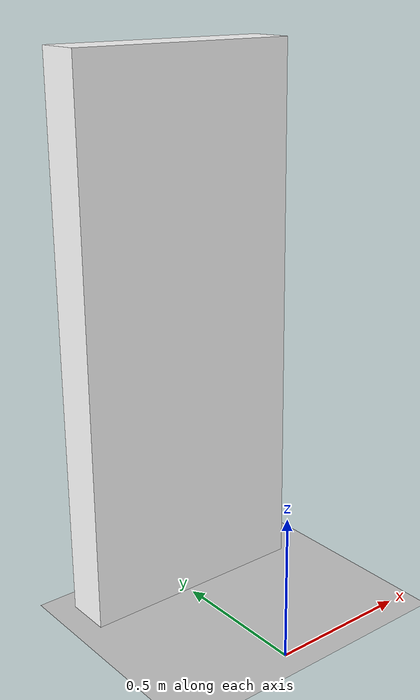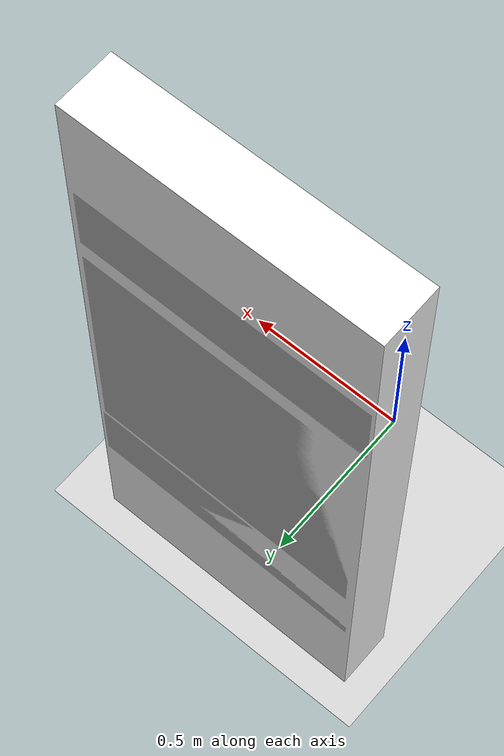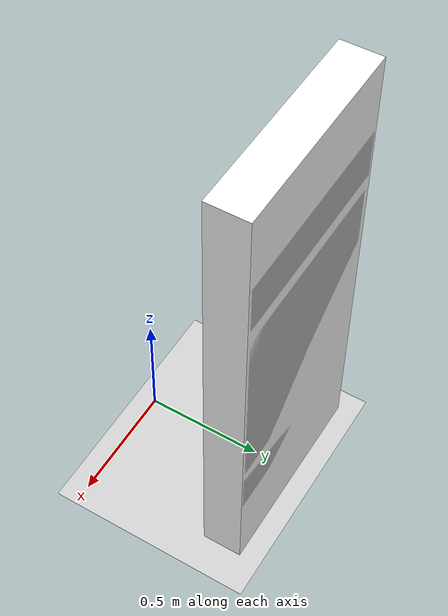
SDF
<sdf version="1.6">
 <world name="default">
  <plugin name="ros_link_attacher_plugin" filename="libgazebo_ros_link_attacher.so"/>
  <gravity>0 0 -9.8</gravity>
  <physics name="default_physics" default="0" type="ode">
   <max_step_size>0.001</max_step_size>
   <real_time_factor>1</real_time_factor>
   <real_time_update_rate>1000</real_time_update_rate>
  </physics>
  <scene>
   <shadows>0</shadows>
   <grid>0</grid>
   <origin_visual>0</origin_visual>
   <ambient>0.4 0.4 0.4 1</ambient>
   <background>0.7 0.7 0.7 1</background>
  </scene>
  <model name="ground_plane">
   <static>1</static>
   <link name="link">
    <collision name="collision">
     <geometry><plane><normal>0 0 1</normal><size>100 100</size></plane></geometry>
     <surface>
      <contact><collide_bitmask>65535</collide_bitmask></contact>
      <friction><ode><mu>100</mu><mu2>50</mu2></ode></friction>
     </surface>
    </collision>
    <visual name="visual">
     <cast_shadows>0</cast_shadows>
     <geometry><plane><normal>0 0 1</normal><size>100 100</size></plane></geometry>
     <material>
      <script><uri>file://media/materials/scripts/gazebo.material</uri><name>Gazebo/Grey</name></script>
     </material>
    </visual>
   </link>
  </model>
  <model name="qr_wall">
   <pose>0.444996 0.521404 0 0 -0 1.57</pose>
   <static>1</static>
   <link name="body">
    <inertial>
     <mass>1</mass>
     <inertia>
      <ixx>0.166667</ixx>
      <ixy>0</ixy>
      <ixz>0</ixz>
      <iyy>0.166667</iyy>
      <iyz>0</iyz>
      <izz>0.166667</izz>
     </inertia>
    </inertial>
    <collision name="collision"><geometry><box><size>1 1 1</size></box></geometry></collision>
    <visual name="visual"><geometry><mesh><uri>model://qr_wall/meshes/qr_wall.dae</uri></mesh></geometry></visual>
   </link>
  </model>
  <light name="Warehouse_CeilingLight_003" type="point">
   <pose>0 0 9 0 -0 0</pose>
   <diffuse>0.5 0.5 0.5 1</diffuse>
   <specular>0.2 0.2 0.2 1</specular>
   <attenuation>
    <range>80</range>
    <constant>0.3</constant>
    <linear>0.01</linear>
    <quadratic>0.001</quadratic>
   </attenuation>
   <direction>0.1 0.1 -1</direction>
  </light>
  <magnetic_field>6e-06 2.3e-05 -4.2e-05</magnetic_field>
  <atmosphere type="adiabatic"/>
  <audio><device>default</device></audio>
  <spherical_coordinates>
   <surface_model>EARTH_WGS84</surface_model>
   <latitude_deg>0</latitude_deg>
   <longitude_deg>0</longitude_deg>
   <elevation>0</elevation>
   <heading_deg>0</heading_deg>
  </spherical_coordinates>
 </world>
</sdf>
